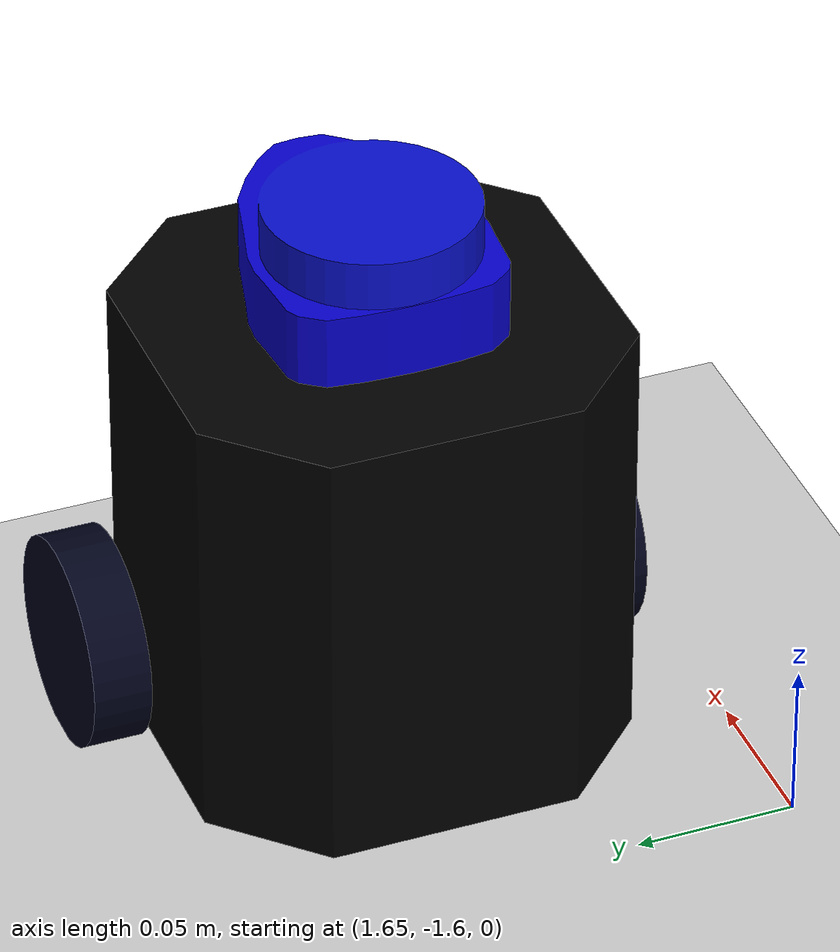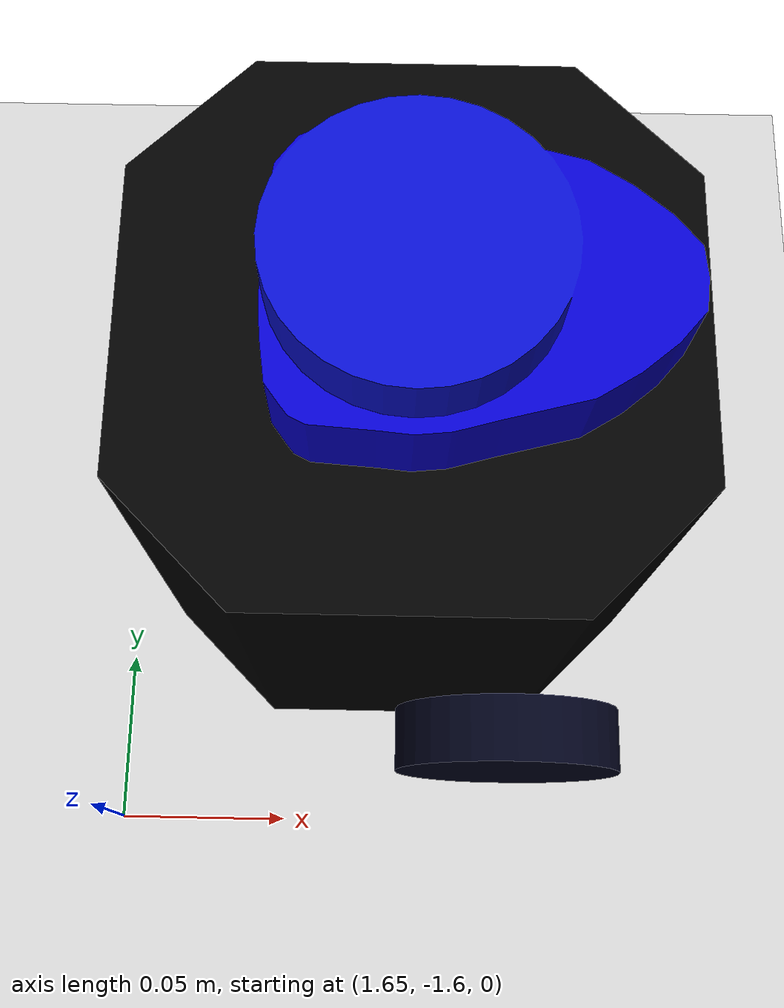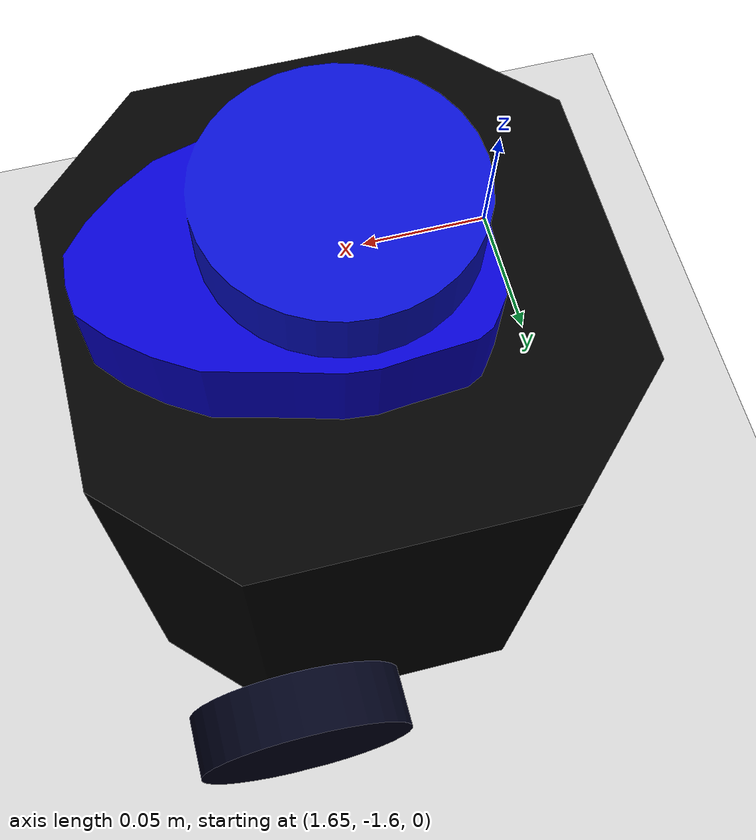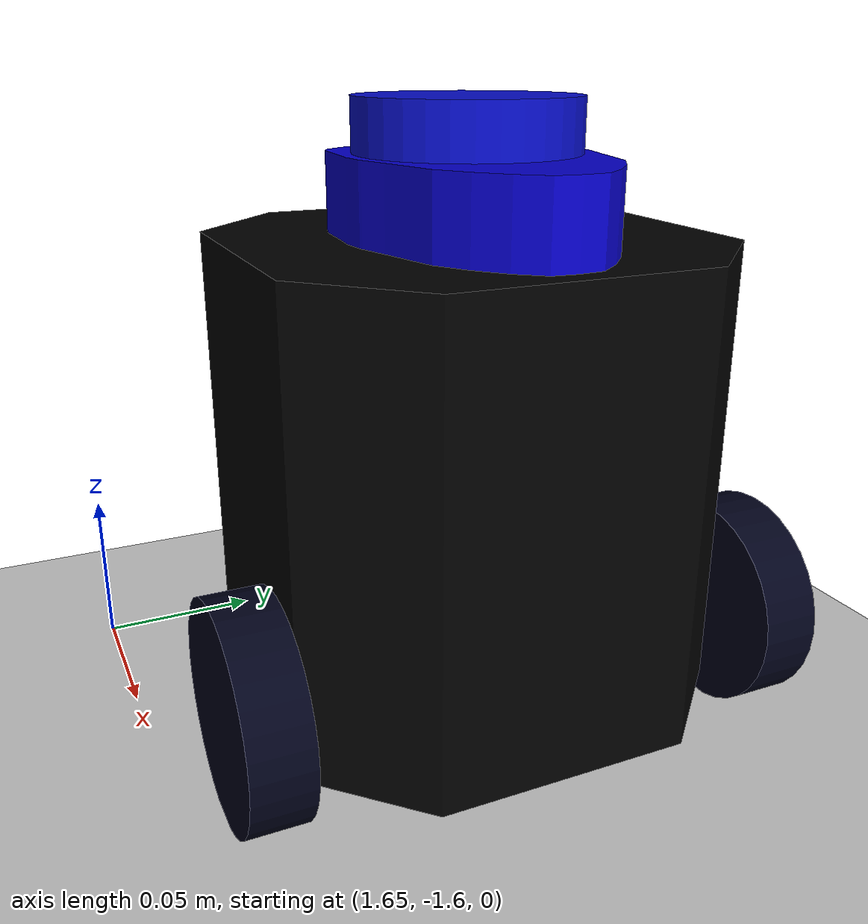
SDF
<sdf version="1.7">
 <world name="default">
  <model name="ground_plane">
   <static>1</static>
   <link name="link">
    <collision name="collision">
     <geometry><plane><normal>0 0 1</normal><size>100 100</size></plane></geometry>
     <surface><friction><ode><mu>100</mu><mu2>50</mu2></ode></friction></surface>
    </collision>
    <visual name="visual">
     <cast_shadows>0</cast_shadows>
     <geometry><plane><normal>0 0 1</normal><size>100 100</size></plane></geometry>
     <material>
      <script><uri>file://media/materials/scripts/gazebo.material</uri><name>Gazebo/Grey</name></script>
     </material>
    </visual>
   </link>
  </model>
  <model name="tb3">
   <pose>1.76713 -1.49834 0.008881 2e-05 0.001441 1.4e-05</pose>
   <link name="base_footprint">
    <inertial>
     <inertia><ixx>1</ixx><ixy>0</ixy><ixz>0</ixz><iyy>1</iyy><iyz>0</iyz><izz>1</izz></inertia>
     <mass>1</mass>
    </inertial>
   </link>
   <link name="base_link">
    <inertial>
     <pose>-0.032 0 0.07 0 -0 0</pose>
     <inertia>
      <ixx>0.723974</ixx>
      <ixy>4.6864e-10</ixy>
      <ixz>-1.09526e-08</ixz>
      <iyy>0.723974</iyy>
      <iyz>2.85826e-09</iyz>
      <izz>0.65305</izz>
     </inertia>
     <mass>0.825735</mass>
    </inertial>
    <collision name="base_collision">
     <pose>-0.032 0 0.07 0 -0 0</pose>
     <geometry><box><size>0.14 0.14 0.14</size></box></geometry>
    </collision>
    <visual name="base_visual">
     <pose>-0.032 0 0 0 -0 0</pose>
     <geometry>
      <mesh><uri>model://turtlebot3_burger/meshes/burger_base.dae</uri><scale>0.001 0.001 0.001</scale></mesh>
     </geometry>
    </visual>
   </link>
   <link name="imu_link">
    <sensor name="tb3_imu" type="imu">
     <always_on>1</always_on>
     <update_rate>30</update_rate>
     <imu>
      <angular_velocity>
       <x><noise type="gaussian"><mean>0</mean><stddev>0.0002</stddev></noise></x>
       <y><noise type="gaussian"><mean>0</mean><stddev>0.0002</stddev></noise></y>
       <z><noise type="gaussian"><mean>0</mean><stddev>0.0002</stddev></noise></z>
      </angular_velocity>
      <linear_acceleration>
       <x><noise type="gaussian"><mean>0</mean><stddev>0.017</stddev></noise></x>
       <y><noise type="gaussian"><mean>0</mean><stddev>0.017</stddev></noise></y>
       <z><noise type="gaussian"><mean>0</mean><stddev>0.017</stddev></noise></z>
      </linear_acceleration>
     </imu>
     <plugin name="turtlebot3_imu" filename="libgazebo_ros_imu_sensor.so">
      <ros><remapping>~/out:=imu</remapping><namespace>/tb3</namespace></ros>
     </plugin>
    </sensor>
    <inertial>
     <inertia><ixx>1</ixx><ixy>0</ixy><ixz>0</ixz><iyy>1</iyy><iyz>0</iyz><izz>1</izz></inertia>
     <mass>1</mass>
    </inertial>
   </link>
   <link name="base_scan">
    <inertial>
     <pose>-0.02 0 0.161 0 -0 0</pose>
     <inertia><ixx>0.001</ixx><ixy>0</ixy><ixz>0</ixz><iyy>0.001</iyy><iyz>0</iyz><izz>0.001</izz></inertia>
     <mass>0.114</mass>
    </inertial>
    <collision name="lidar_sensor_collision">
     <pose>-0.02 0 0.161 0 -0 0</pose>
     <geometry><cylinder><radius>0.0508</radius><length>0.055</length></cylinder></geometry>
    </collision>
    <visual name="lidar_sensor_visual">
     <pose>-0.032 0 0.171 0 -0 0</pose>
     <geometry>
      <mesh><uri>model://turtlebot3_burger/meshes/lds.dae</uri><scale>0.001 0.001 0.001</scale></mesh>
     </geometry>
    </visual>
    <sensor name="hls_lfcd_lds" type="ray">
     <always_on>1</always_on>
     <visualize>1</visualize>
     <pose>-0.032 0 0.171 0 -0 0</pose>
     <update_rate>5</update_rate>
     <ray>
      <scan>
       <horizontal>
        <samples>360</samples>
        <resolution>1</resolution>
        <min_angle>0</min_angle>
        <max_angle>6.28</max_angle>
       </horizontal>
       <vertical><samples>1</samples><min_angle>0</min_angle><max_angle>0</max_angle></vertical>
      </scan>
      <range><min>0.12</min><max>1</max><resolution>0.015</resolution></range>
      <noise><type>gaussian</type><mean>0</mean><stddev>0.01</stddev></noise>
     </ray>
     <plugin name="turtlebot3_laserscan" filename="libgazebo_ros_ray_sensor.so">
      <ros><remapping>~/out:=scan</remapping><visualize>1</visualize><namespace>/tb3</namespace></ros>
      <output_type>sensor_msgs/LaserScan</output_type>
      <frame_name>base_scan</frame_name>
     </plugin>
    </sensor>
   </link>
   <link name="wheel_left_link">
    <inertial>
     <pose>0 0.08 0.023 -1.57 0 0</pose>
     <inertia>
      <ixx>0.00181582</ixx>
      <ixy>-9.3392e-12</ixy>
      <ixz>1.04909e-11</ixz>
      <iyy>0.00329221</iyy>
      <iyz>5.75694e-11</iyz>
      <izz>0.00181582</izz>
     </inertia>
     <mass>0.0284989</mass>
    </inertial>
    <collision name="wheel_left_collision">
     <pose>0 0.08 0.023 -1.57 0 0</pose>
     <geometry><cylinder><radius>0.033</radius><length>0.018</length></cylinder></geometry>
     <surface>
      <friction>
       <ode><mu>100000</mu><mu2>100000</mu2><fdir1>0 0 0</fdir1><slip1>0</slip1><slip2>0</slip2></ode>
      </friction>
      <contact>
       <ode>
        <soft_cfm>0</soft_cfm>
        <soft_erp>0.2</soft_erp>
        <kp>100000</kp>
        <kd>1</kd>
        <max_vel>0.01</max_vel>
        <min_depth>0.001</min_depth>
       </ode>
      </contact>
     </surface>
    </collision>
    <visual name="wheel_left_visual">
     <pose>0 0.08 0.023 0 -0 0</pose>
     <geometry>
      <mesh><uri>model://turtlebot3_burger/meshes/tire.dae</uri><scale>0.001 0.001 0.001</scale></mesh>
     </geometry>
    </visual>
   </link>
   <link name="wheel_right_link">
    <inertial>
     <pose>0 -0.08 0.023 -1.57 0 0</pose>
     <inertia>
      <ixx>0.00181582</ixx>
      <ixy>-9.3392e-12</ixy>
      <ixz>1.04909e-11</ixz>
      <iyy>0.00329221</iyy>
      <iyz>5.75694e-11</iyz>
      <izz>0.00181582</izz>
     </inertia>
     <mass>0.0284989</mass>
    </inertial>
    <collision name="wheel_right_collision">
     <pose>0 -0.08 0.023 -1.57 0 0</pose>
     <geometry><cylinder><radius>0.033</radius><length>0.018</length></cylinder></geometry>
     <surface>
      <friction>
       <ode><mu>100000</mu><mu2>100000</mu2><fdir1>0 0 0</fdir1><slip1>0</slip1><slip2>0</slip2></ode>
      </friction>
      <contact>
       <ode>
        <soft_cfm>0</soft_cfm>
        <soft_erp>0.2</soft_erp>
        <kp>100000</kp>
        <kd>1</kd>
        <max_vel>0.01</max_vel>
        <min_depth>0.001</min_depth>
       </ode>
      </contact>
     </surface>
    </collision>
    <visual name="wheel_right_visual">
     <pose>0 -0.08 0.023 0 -0 0</pose>
     <geometry>
      <mesh><uri>model://turtlebot3_burger/meshes/tire.dae</uri><scale>0.001 0.001 0.001</scale></mesh>
     </geometry>
    </visual>
   </link>
   <link name="caster_back_link">
    <pose>-0.081 0 -0.004 -1.57 0 0</pose>
    <inertial>
     <mass>0.005</mass>
     <inertia><ixx>0.001</ixx><ixy>0</ixy><ixz>0</ixz><iyy>0.001</iyy><iyz>0</iyz><izz>0.001</izz></inertia>
    </inertial>
    <collision name="collision">
     <geometry><sphere><radius>0.005</radius></sphere></geometry>
     <surface>
      <contact>
       <ode>
        <soft_cfm>0</soft_cfm>
        <soft_erp>0.2</soft_erp>
        <kp>100000</kp>
        <kd>1</kd>
        <max_vel>0.01</max_vel>
        <min_depth>0.001</min_depth>
       </ode>
      </contact>
     </surface>
    </collision>
   </link>
   <joint name="base_joint" type="fixed">
    <parent>base_footprint</parent>
    <child>base_link</child>
    <pose>0 0 0.01 0 -0 0</pose>
   </joint>
   <joint name="wheel_left_joint" type="revolute">
    <parent>base_link</parent>
    <child>wheel_left_link</child>
    <pose>0 0.08 0.023 -1.57 0 0</pose>
    <axis>
     <xyz>0 0 1</xyz>
     <limit><lower>-1e+16</lower><upper>1e+16</upper></limit>
     <dynamics><spring_reference>0</spring_reference><spring_stiffness>0</spring_stiffness></dynamics>
    </axis>
   </joint>
   <joint name="wheel_right_joint" type="revolute">
    <parent>base_link</parent>
    <child>wheel_right_link</child>
    <pose>0 -0.08 0.023 -1.57 0 0</pose>
    <axis>
     <xyz>0 0 1</xyz>
     <limit><lower>-1e+16</lower><upper>1e+16</upper></limit>
     <dynamics><spring_reference>0</spring_reference><spring_stiffness>0</spring_stiffness></dynamics>
    </axis>
   </joint>
   <joint name="caster_back_joint" type="ball"><parent>base_link</parent><child>caster_back_link</child></joint>
   <joint name="imu_joint" type="fixed">
    <parent>base_link</parent>
    <child>imu_link</child>
    <pose>-0.032 0 0.068 0 -0 0</pose>
    <axis><xyz>0 0 1</xyz><limit><lower>-1e+16</lower><upper>1e+16</upper></limit></axis>
   </joint>
   <joint name="lidar_joint" type="fixed">
    <parent>base_link</parent>
    <child>base_scan</child>
    <pose>-0.032 0 0.171 0 -0 0</pose>
    <axis><xyz>0 0 1</xyz><limit><lower>-1e+16</lower><upper>1e+16</upper></limit></axis>
   </joint>
   <plugin name="turtlebot3_diff_drive" filename="libgazebo_ros_diff_drive.so">
    <ros><remapping>/tf:=tf</remapping><namespace>/tb3</namespace></ros>
    <update_rate>10</update_rate>
    <left_joint>wheel_left_joint</left_joint>
    <right_joint>wheel_right_joint</right_joint>
    <wheel_separation>0.160</wheel_separation>
    <wheel_diameter>0.066</wheel_diameter>
    <max_wheel_torque>20</max_wheel_torque>
    <max_wheel_acceleration>1.0</max_wheel_acceleration>
    <command_topic>cmd_vel</command_topic>
    <publish_odom>1</publish_odom>
    <publish_odom_tf>1</publish_odom_tf>
    <publish_wheel_tf>0</publish_wheel_tf>
    <odometry_topic>odom</odometry_topic>
    <odometry_frame>odom</odometry_frame>
    <robot_base_frame>base_footprint</robot_base_frame>
   </plugin>
   <plugin name="turtlebot3_joint_state" filename="libgazebo_ros_joint_state_publisher.so">
    <ros><remapping>~/out:=joint_states</remapping><namespace>/tb3</namespace></ros>
    <update_rate>30</update_rate>
    <joint_name>wheel_left_joint</joint_name>
    <joint_name>wheel_right_joint</joint_name>
   </plugin>
  </model>
 </world>
</sdf>
